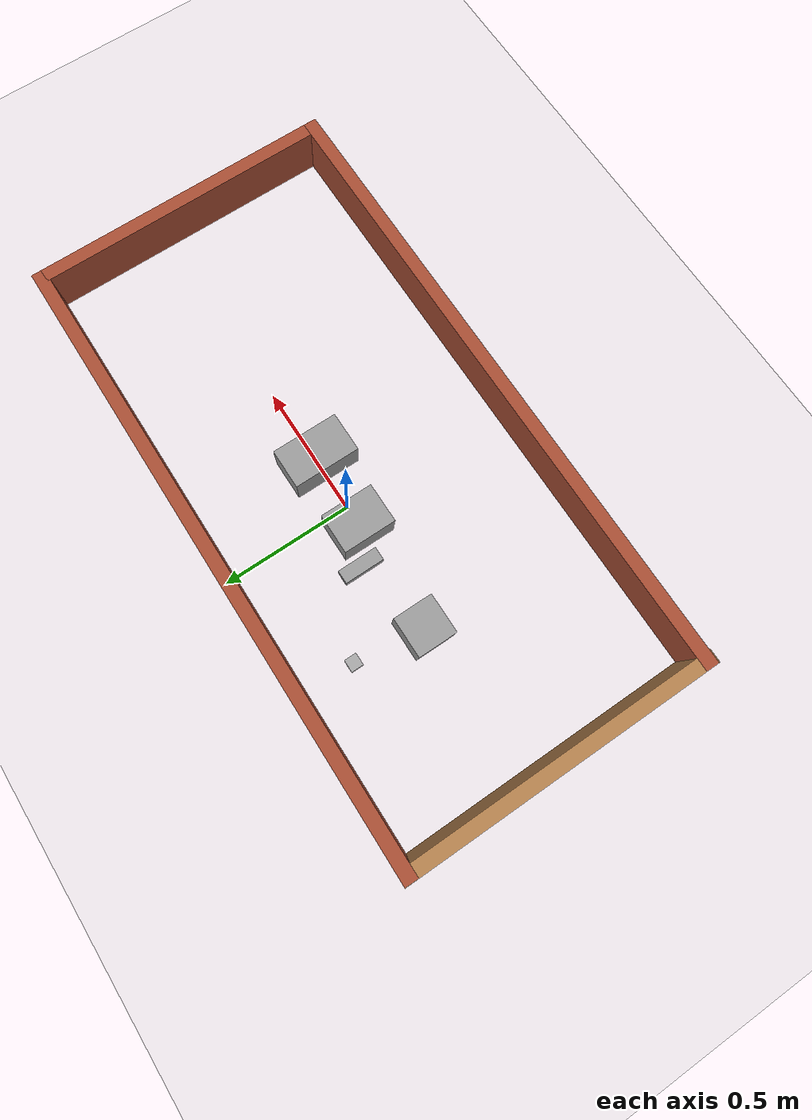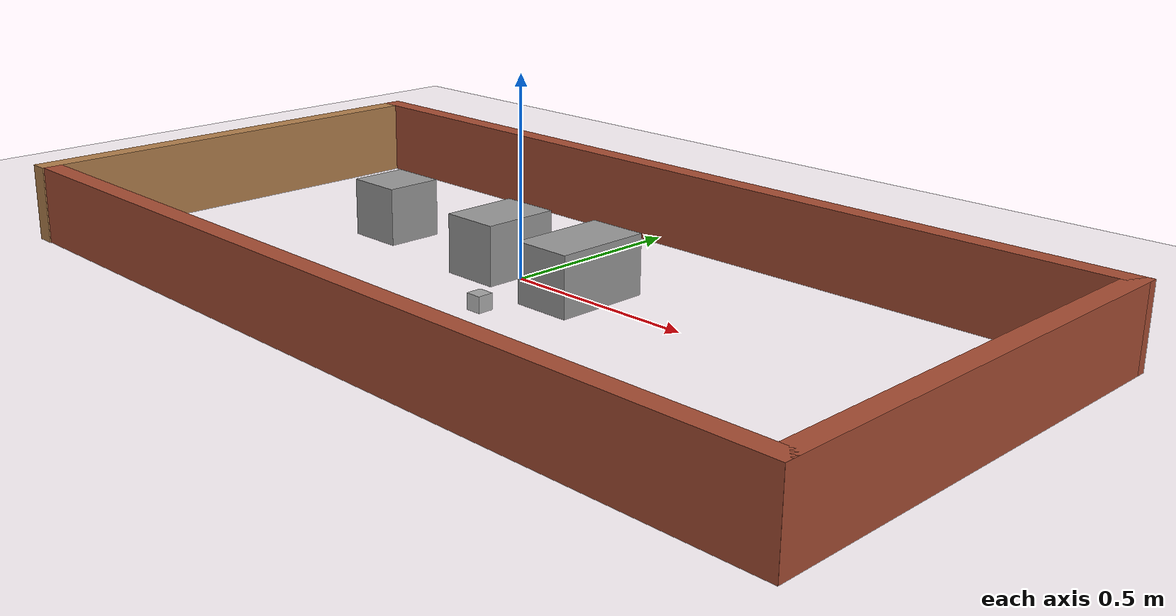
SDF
<sdf version="1.7">
 <world name="default">
  <light name="sun" type="directional">
   <pose>0 0 10 0 -0 0</pose>
   <diffuse>0.8 0.8 0.8 1</diffuse>
   <specular>0.2 0.2 0.2 1</specular>
   <attenuation>
    <range>1000</range>
    <constant>0.9</constant>
    <linear>0.01</linear>
    <quadratic>0.001</quadratic>
   </attenuation>
   <direction>-0.5 0.1 -0.9</direction>
   <spot><inner_angle>0</inner_angle><outer_angle>0</outer_angle><falloff>0</falloff></spot>
  </light>
  <model name="ground_plane">
   <static>1</static>
   <link name="link">
    <collision name="collision">
     <geometry><plane><normal>0 0 1</normal><size>100 100</size></plane></geometry>
     <surface>
      <contact><collide_bitmask>65535</collide_bitmask></contact>
      <friction><ode><mu>100</mu><mu2>50</mu2></ode></friction>
     </surface>
    </collision>
    <visual name="visual">
     <cast_shadows>0</cast_shadows>
     <geometry><plane><normal>0 0 1</normal><size>100 100</size></plane></geometry>
     <material>
      <script><uri>file://media/materials/scripts/gazebo.material</uri><name>Gazebo/Grey</name></script>
     </material>
    </visual>
   </link>
  </model>
  <gravity>0 0 -9.8</gravity>
  <magnetic_field>6e-06 2.3e-05 -4.2e-05</magnetic_field>
  <atmosphere type="adiabatic"/>
  <physics type="ode">
   <max_step_size>0.001</max_step_size>
   <real_time_factor>1</real_time_factor>
   <real_time_update_rate>1000</real_time_update_rate>
  </physics>
  <scene><ambient>0.4 0.4 0.4 1</ambient><background>0.7 0.7 0.7 1</background><shadows>1</shadows></scene>
  <audio><device>default</device></audio>
  <spherical_coordinates>
   <surface_model>EARTH_WGS84</surface_model>
   <latitude_deg>0</latitude_deg>
   <longitude_deg>0</longitude_deg>
   <elevation>0</elevation>
   <heading_deg>0</heading_deg>
  </spherical_coordinates>
  <model name="Espacio_virtual">
   <pose>0.439718 -0.092271 0 0 -0 0</pose>
   <link name="Wall_10">
    <collision name="Wall_10_Collision">
     <geometry><box><size>2.4 0.05 0.2</size></box></geometry>
     <pose>0 0 0.1 0 -0 0</pose>
    </collision>
    <visual name="Wall_10_Visual">
     <pose>0 0 0.1 0 -0 0</pose>
     <geometry><box><size>2.4 0.05 0.2</size></box></geometry>
     <material>
      <script><uri>file://media/materials/scripts/gazebo.material</uri><name>Gazebo/Bricks</name></script>
      <ambient>0.760784 0.662745 0.627451 1</ambient>
     </material>
     <meta><layer>0</layer></meta>
    </visual>
    <pose>-0.346997 -0.575038 0 0 -0 -0.002929</pose>
   </link>
   <link name="Wall_12">
    <collision name="Wall_12_Collision">
     <geometry><box><size>1.20365 0.05 0.2</size></box></geometry>
     <pose>0 0 0.1 0 -0 0</pose>
    </collision>
    <visual name="Wall_12_Visual">
     <pose>0 0 0.1 0 -0 0</pose>
     <geometry><box><size>1.20365 0.05 0.2</size></box></geometry>
     <material>
      <script><uri>file://media/materials/scripts/gazebo.material</uri><name>Gazebo/Bricks</name></script>
      <ambient>0.760784 0.662745 0.627451 1</ambient>
     </material>
     <meta><layer>0</layer></meta>
    </visual>
    <pose>0.828137 -0.00148 0 0 -0 1.5708</pose>
   </link>
   <link name="Wall_15">
    <collision name="Wall_15_Collision">
     <geometry><box><size>2.4 0.05 0.2</size></box></geometry>
     <pose>0 0 0.1 0 -0 0</pose>
    </collision>
    <visual name="Wall_15_Visual">
     <pose>0 0 0.1 0 -0 0</pose>
     <geometry><box><size>2.4 0.05 0.2</size></box></geometry>
     <material>
      <script><uri>file://media/materials/scripts/gazebo.material</uri><name>Gazebo/Bricks</name></script>
      <ambient>0.760784 0.662745 0.627451 1</ambient>
     </material>
     <meta><layer>0</layer></meta>
    </visual>
    <pose>-0.346863 0.57702 0 0 -0 -0.001277</pose>
   </link>
   <link name="Wall_8">
    <collision name="Wall_8_Collision">
     <geometry><box><size>1.20339 0.05 0.2</size></box></geometry>
     <pose>0 0 0.1 0 -0 0</pose>
    </collision>
    <visual name="Wall_8_Visual">
     <pose>0 0 0.1 0 -0 0</pose>
     <geometry><box><size>1.20339 0.05 0.2</size></box></geometry>
     <material>
      <script><uri>file://media/materials/scripts/gazebo.material</uri><name>Gazebo/Wood</name></script>
      <ambient>0.760784 0.662745 0.627451 1</ambient>
     </material>
     <meta><layer>0</layer></meta>
    </visual>
    <pose>-1.522 0.001827 0 0 -0 1.57056</pose>
   </link>
   <static>1</static>
  </model>
  <model name="Cajas">
   <link name="link">
    <inertial>
     <mass>1</mass>
     <inertia>
      <ixx>0.166667</ixx>
      <ixy>0</ixy>
      <ixz>0</ixz>
      <iyy>0.166667</iyy>
      <iyz>0</iyz>
      <izz>0.166667</izz>
     </inertia>
    </inertial>
    <pose>-0.019972 -0.4113 0 0 -0 0</pose>
    <visual name="visual">
     <geometry><box><size>0.15 0.15 0.15</size></box></geometry>
     <material>
      <script><name>Gazebo/Grey</name><uri>file://media/materials/scripts/gazebo.material</uri></script>
      <shader type="pixel"><normal_map>__default__</normal_map></shader>
      <ambient>0.3 0.3 0.3 1</ambient>
      <diffuse>0.7 0.7 0.7 1</diffuse>
      <specular>0.01 0.01 0.01 1</specular>
      <emissive>0 0 0 1</emissive>
     </material>
    </visual>
    <collision name="collision">
     <geometry><box><size>0.15 0.15 0.15</size></box></geometry>
     <surface>
      <friction>
       <ode><mu>1</mu><mu2>1</mu2><fdir1>0 0 0</fdir1><slip1>0</slip1><slip2>0</slip2></ode>
       <torsional>
        <coefficient>1</coefficient>
        <patch_radius>0</patch_radius>
        <surface_radius>0</surface_radius>
        <use_patch_radius>1</use_patch_radius>
        <ode><slip>0</slip></ode>
       </torsional>
      </friction>
      <bounce><restitution_coefficient>0</restitution_coefficient><threshold>1e+06</threshold></bounce>
      <contact>
       <collide_without_contact>0</collide_without_contact>
       <collide_without_contact_bitmask>1</collide_without_contact_bitmask>
       <collide_bitmask>1</collide_bitmask>
       <ode>
        <soft_cfm>0</soft_cfm>
        <soft_erp>0.2</soft_erp>
        <kp>1e+13</kp>
        <kd>1</kd>
        <max_vel>0.01</max_vel>
        <min_depth>0</min_depth>
       </ode>
       <bullet>
        <split_impulse>1</split_impulse>
        <split_impulse_penetration_threshold>-0.01</split_impulse_penetration_threshold>
        <soft_cfm>0</soft_cfm>
        <soft_erp>0.2</soft_erp>
        <kp>1e+13</kp>
        <kd>1</kd>
       </bullet>
      </contact>
     </surface>
    </collision>
   </link>
   <link name="link_0">
    <inertial>
     <mass>1</mass>
     <inertia>
      <ixx>0.166667</ixx>
      <ixy>0</ixy>
      <ixz>0</ixz>
      <iyy>0.166667</iyy>
      <iyz>0</iyz>
      <izz>0.166667</izz>
     </inertia>
    </inertial>
    <pose>0.026333 -0.162852 -0.312975 0 -0 0</pose>
    <visual name="visual">
     <geometry><box><size>0.05 0.05 0.05</size></box></geometry>
     <material>
      <lighting>1</lighting>
      <script><uri>file://media/materials/scripts/gazebo.material</uri><name>Gazebo/Grey</name></script>
      <shader type="pixel"><normal_map>__default__</normal_map></shader>
      <ambient>0.3 0.3 0.3 1</ambient>
      <diffuse>0.7 0.7 0.7 1</diffuse>
      <specular>0.01 0.01 0.01 1</specular>
      <emissive>0 0 0 1</emissive>
     </material>
    </visual>
    <collision name="collision">
     <geometry><box><size>0.05 0.05 0.05</size></box></geometry>
     <surface>
      <friction>
       <ode><mu>1</mu><mu2>1</mu2><fdir1>0 0 0</fdir1><slip1>0</slip1><slip2>0</slip2></ode>
       <torsional>
        <coefficient>1</coefficient>
        <patch_radius>0</patch_radius>
        <surface_radius>0</surface_radius>
        <use_patch_radius>1</use_patch_radius>
        <ode><slip>0</slip></ode>
       </torsional>
      </friction>
      <bounce><restitution_coefficient>0</restitution_coefficient><threshold>1e+06</threshold></bounce>
      <contact>
       <collide_without_contact>0</collide_without_contact>
       <collide_without_contact_bitmask>1</collide_without_contact_bitmask>
       <collide_bitmask>1</collide_bitmask>
       <ode>
        <soft_cfm>0</soft_cfm>
        <soft_erp>0.2</soft_erp>
        <kp>1e+13</kp>
        <kd>1</kd>
        <max_vel>0.01</max_vel>
        <min_depth>0</min_depth>
       </ode>
       <bullet>
        <split_impulse>1</split_impulse>
        <split_impulse_penetration_threshold>-0.01</split_impulse_penetration_threshold>
        <soft_cfm>0</soft_cfm>
        <soft_erp>0.2</soft_erp>
        <kp>1e+13</kp>
        <kd>1</kd>
       </bullet>
      </contact>
     </surface>
    </collision>
   </link>
   <link name="link_1">
    <inertial>
     <mass>1</mass>
     <inertia>
      <ixx>0.166667</ixx>
      <ixy>0</ixy>
      <ixz>0</ixz>
      <iyy>0.166667</iyy>
      <iyz>0</iyz>
      <izz>0.166667</izz>
     </inertia>
    </inertial>
    <pose>0.267085 -0.348566 0 0 -0 0</pose>
    <visual name="visual">
     <geometry><box><size>0.05 0.15 0.05</size></box></geometry>
     <material>
      <lighting>1</lighting>
      <script><uri>file://media/materials/scripts/gazebo.material</uri><name>Gazebo/Grey</name></script>
      <shader type="pixel"><normal_map>__default__</normal_map></shader>
      <ambient>0.3 0.3 0.3 1</ambient>
      <diffuse>0.7 0.7 0.7 1</diffuse>
      <specular>0.01 0.01 0.01 1</specular>
      <emissive>0 0 0 1</emissive>
     </material>
    </visual>
    <collision name="collision">
     <geometry><box><size>0.05 0.15 0.05</size></box></geometry>
     <surface>
      <friction>
       <ode><mu>1</mu><mu2>1</mu2><fdir1>0 0 0</fdir1><slip1>0</slip1><slip2>0</slip2></ode>
       <torsional>
        <coefficient>1</coefficient>
        <patch_radius>0</patch_radius>
        <surface_radius>0</surface_radius>
        <use_patch_radius>1</use_patch_radius>
        <ode><slip>0</slip></ode>
       </torsional>
      </friction>
      <bounce><restitution_coefficient>0</restitution_coefficient><threshold>1e+06</threshold></bounce>
      <contact>
       <collide_without_contact>0</collide_without_contact>
       <collide_without_contact_bitmask>1</collide_without_contact_bitmask>
       <collide_bitmask>1</collide_bitmask>
       <ode>
        <soft_cfm>0</soft_cfm>
        <soft_erp>0.2</soft_erp>
        <kp>1e+13</kp>
        <kd>1</kd>
        <max_vel>0.01</max_vel>
        <min_depth>0</min_depth>
       </ode>
       <bullet>
        <split_impulse>1</split_impulse>
        <split_impulse_penetration_threshold>-0.01</split_impulse_penetration_threshold>
        <soft_cfm>0</soft_cfm>
        <soft_erp>0.2</soft_erp>
        <kp>1e+13</kp>
        <kd>1</kd>
       </bullet>
      </contact>
     </surface>
    </collision>
   </link>
   <link name="link_2">
    <inertial>
     <mass>1</mass>
     <inertia>
      <ixx>0.166667</ixx>
      <ixy>0</ixy>
      <ixz>0</ixz>
      <iyy>0.166667</iyy>
      <iyz>0</iyz>
      <izz>0.166667</izz>
     </inertia>
    </inertial>
    <pose>0.398898 -0.423518 0 0 -0 0</pose>
    <visual name="visual">
     <geometry><box><size>0.15 0.2 0.15</size></box></geometry>
     <material>
      <lighting>1</lighting>
      <script><uri>file://media/materials/scripts/gazebo.material</uri><name>Gazebo/Grey</name></script>
      <shader type="pixel"><normal_map>__default__</normal_map></shader>
      <ambient>0.3 0.3 0.3 1</ambient>
      <diffuse>0.7 0.7 0.7 1</diffuse>
      <specular>0.01 0.01 0.01 1</specular>
      <emissive>0 0 0 1</emissive>
     </material>
    </visual>
    <collision name="collision">
     <geometry><box><size>0.15 0.2 0.15</size></box></geometry>
     <surface>
      <friction>
       <ode><mu>1</mu><mu2>1</mu2><fdir1>0 0 0</fdir1><slip1>0</slip1><slip2>0</slip2></ode>
       <torsional>
        <coefficient>1</coefficient>
        <patch_radius>0</patch_radius>
        <surface_radius>0</surface_radius>
        <use_patch_radius>1</use_patch_radius>
        <ode><slip>0</slip></ode>
       </torsional>
      </friction>
      <bounce><restitution_coefficient>0</restitution_coefficient><threshold>1e+06</threshold></bounce>
      <contact>
       <collide_without_contact>0</collide_without_contact>
       <collide_without_contact_bitmask>1</collide_without_contact_bitmask>
       <collide_bitmask>1</collide_bitmask>
       <ode>
        <soft_cfm>0</soft_cfm>
        <soft_erp>0.2</soft_erp>
        <kp>1e+13</kp>
        <kd>1</kd>
        <max_vel>0.01</max_vel>
        <min_depth>0</min_depth>
       </ode>
       <bullet>
        <split_impulse>1</split_impulse>
        <split_impulse_penetration_threshold>-0.01</split_impulse_penetration_threshold>
        <soft_cfm>0</soft_cfm>
        <soft_erp>0.2</soft_erp>
        <kp>1e+13</kp>
        <kd>1</kd>
       </bullet>
      </contact>
     </surface>
    </collision>
   </link>
   <link name="link_3">
    <inertial>
     <mass>1</mass>
     <inertia>
      <ixx>0.166667</ixx>
      <ixy>0</ixy>
      <ixz>0</ixz>
      <iyy>0.166667</iyy>
      <iyz>0</iyz>
      <izz>0.166667</izz>
     </inertia>
    </inertial>
    <pose>0.679055 -0.432037 0 0 -0 0</pose>
    <visual name="visual">
     <geometry><box><size>0.15 0.25 0.15</size></box></geometry>
     <material>
      <lighting>1</lighting>
      <script><uri>file://media/materials/scripts/gazebo.material</uri><name>Gazebo/Grey</name></script>
      <shader type="pixel"><normal_map>__default__</normal_map></shader>
      <ambient>0.3 0.3 0.3 1</ambient>
      <diffuse>0.7 0.7 0.7 1</diffuse>
      <specular>0.01 0.01 0.01 1</specular>
      <emissive>0 0 0 1</emissive>
     </material>
    </visual>
    <collision name="collision">
     <geometry><box><size>0.15 0.25 0.15</size></box></geometry>
     <surface>
      <friction>
       <ode><mu>1</mu><mu2>1</mu2><fdir1>0 0 0</fdir1><slip1>0</slip1><slip2>0</slip2></ode>
       <torsional>
        <coefficient>1</coefficient>
        <patch_radius>0</patch_radius>
        <surface_radius>0</surface_radius>
        <use_patch_radius>1</use_patch_radius>
        <ode><slip>0</slip></ode>
       </torsional>
      </friction>
      <bounce><restitution_coefficient>0</restitution_coefficient><threshold>1e+06</threshold></bounce>
      <contact>
       <collide_without_contact>0</collide_without_contact>
       <collide_without_contact_bitmask>1</collide_without_contact_bitmask>
       <collide_bitmask>1</collide_bitmask>
       <ode>
        <soft_cfm>0</soft_cfm>
        <soft_erp>0.2</soft_erp>
        <kp>1e+13</kp>
        <kd>1</kd>
        <max_vel>0.01</max_vel>
        <min_depth>0</min_depth>
       </ode>
       <bullet>
        <split_impulse>1</split_impulse>
        <split_impulse_penetration_threshold>-0.01</split_impulse_penetration_threshold>
        <soft_cfm>0</soft_cfm>
        <soft_erp>0.2</soft_erp>
        <kp>1e+13</kp>
        <kd>1</kd>
       </bullet>
      </contact>
     </surface>
    </collision>
   </link>
   <static>0</static>
   <pose>-0.479783 0.430242 0.075 1e-06 -4e-06 -9e-06</pose>
  </model>
 </world>
</sdf>
